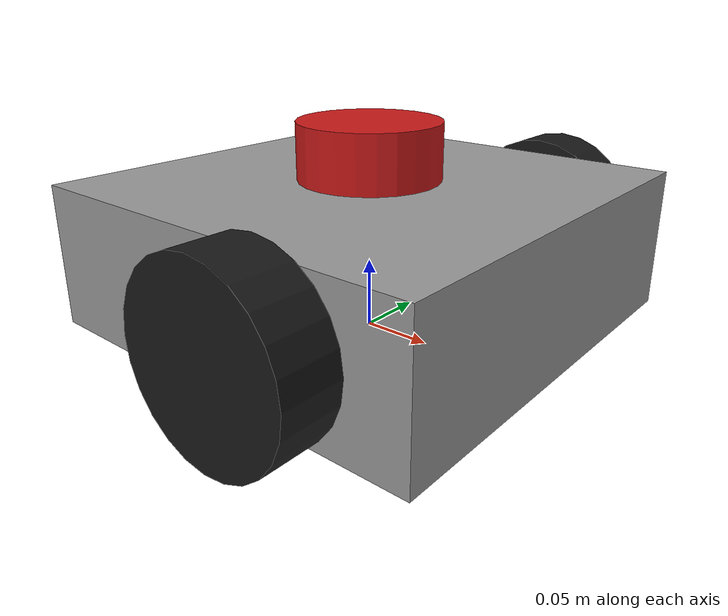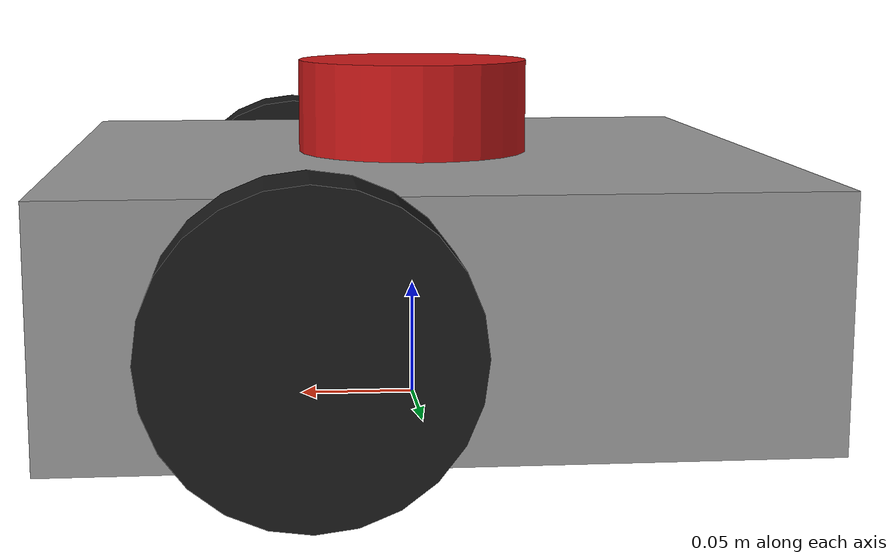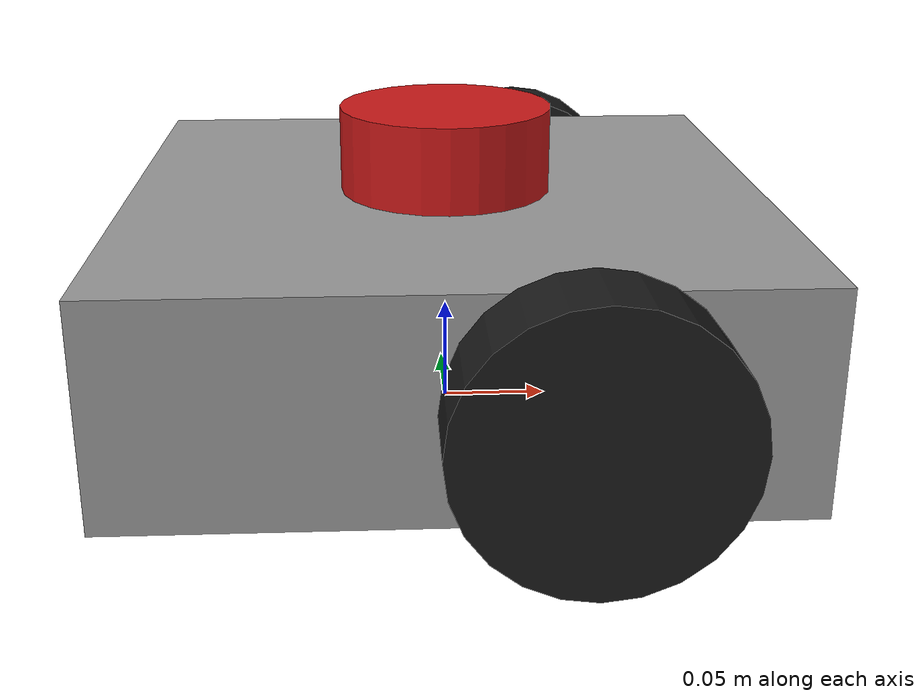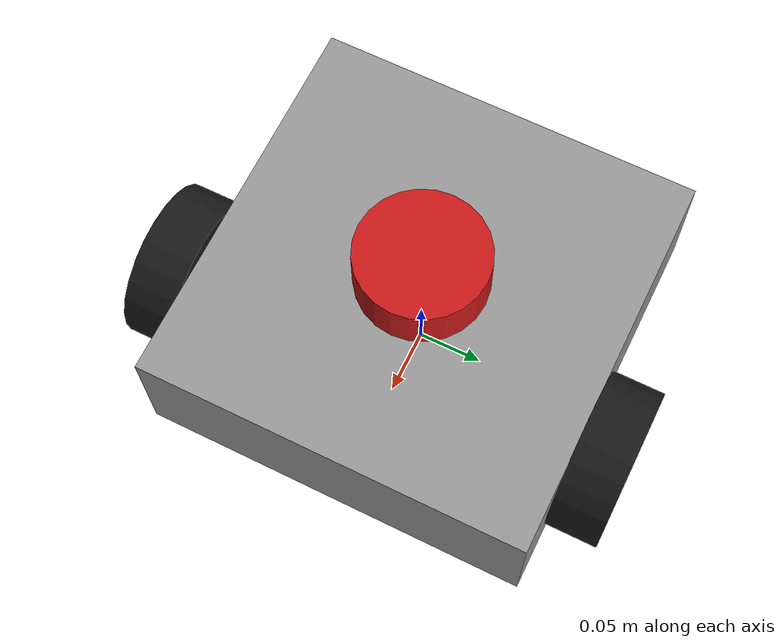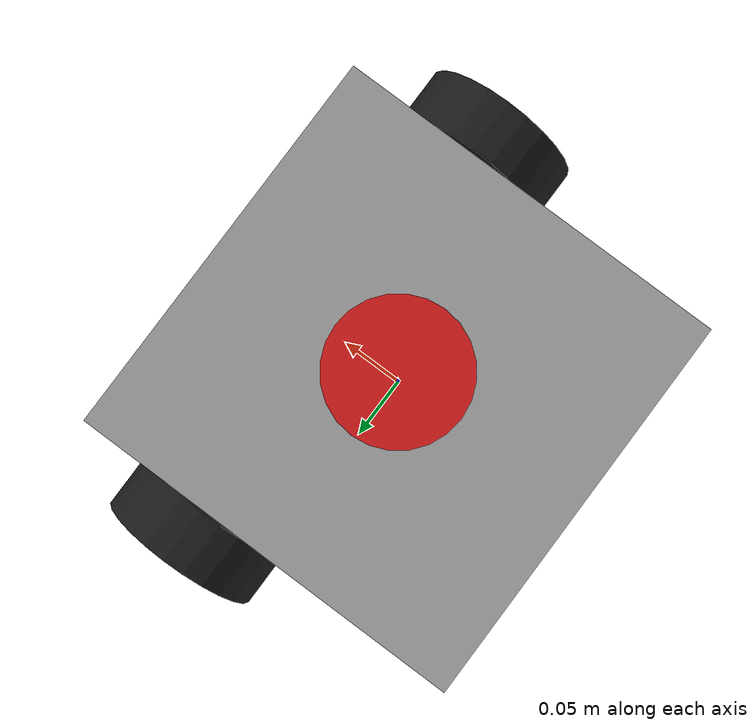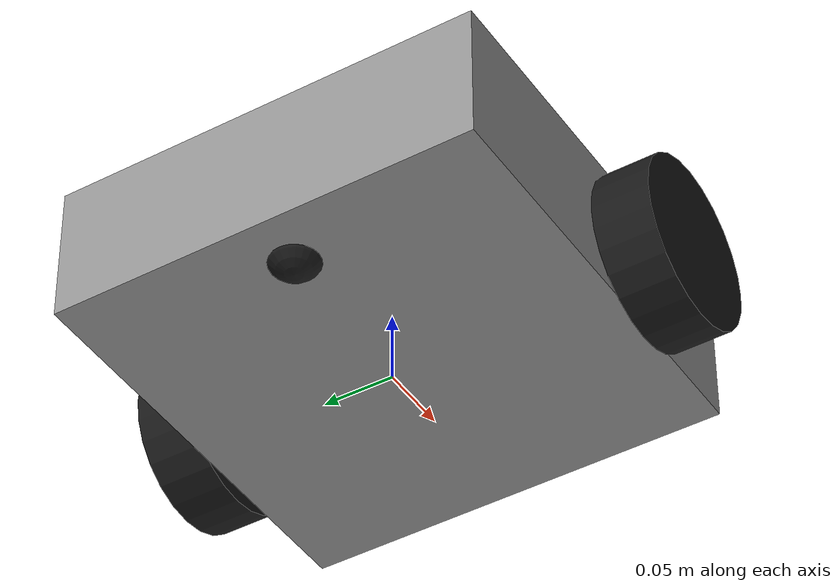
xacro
<?xml version="1.0"?>
<robot name="merobot" xmlns:xacro="http://www.ros.org/wiki/xacro">

  <!-- ==================== Dimensions ==================== -->

  <!-- Chassis (meters, kilograms) -->
  <xacro:property name="base_length" value="0.3"/>
  <xacro:property name="base_width" value="0.3"/>
  <xacro:property name="base_height" value="0.1"/>
  <xacro:property name="base_mass" value="2.0"/>

  <!-- Wheels -->
  <xacro:property name="wheel_radius" value="0.06"/>
  <xacro:property name="wheel_width" value="0.04"/>
  <xacro:property name="wheel_mass" value="0.3"/>
  <xacro:property name="wheel_x_offset" value="0.05"/>

  <!-- Caster -->
  <xacro:property name="caster_radius" value="0.02"/>
  <xacro:property name="caster_mass" value="0.05"/>
  <xacro:property name="caster_x_offset" value="-0.11"/>

  <!-- Lidar -->
  <xacro:property name="lidar_radius" value="0.05"/>
  <xacro:property name="lidar_height" value="0.04"/>
  <xacro:property name="lidar_mass" value="0.1"/>

  <!-- ==================== Colors ==================== -->

  <material name="gray">
    <color rgba="0.6 0.6 0.6 1.0"/>
  </material>

  <material name="black">
    <color rgba="0.1 0.1 0.1 1.0"/>
  </material>

  <material name="red">
    <color rgba="0.8 0.1 0.1 1.0"/>
  </material>

  <!-- ==================== Chassis ==================== -->

  <link name="base_link">
    <visual>
      <geometry>
        <box size="${base_length} ${base_width} ${base_height}"/>
      </geometry>
      <material name="gray"/>
    </visual>

    <collision>
      <geometry>
        <box size="${base_length} ${base_width} ${base_height}"/>
      </geometry>
    </collision>

    <inertial>
      <mass value="${base_mass}"/>
      <inertia
        ixx="${base_mass/12.0*(base_width*base_width + base_height*base_height)}"
        iyy="${base_mass/12.0*(base_length*base_length + base_height*base_height)}"
        izz="${base_mass/12.0*(base_length*base_length + base_width*base_width)}"
        ixy="0" ixz="0" iyz="0"/>
    </inertial>
  </link>

  <!-- Ground reference point -->
  <link name="base_footprint"/>

  <joint name="base_footprint_joint" type="fixed">
    <parent link="base_footprint"/>
    <child link="base_link"/>
    <origin xyz="0 0 ${wheel_radius}" rpy="0 0 0"/>
  </joint>

  <!-- ==================== Wheels ==================== -->

  <xacro:macro name="wheel" params="prefix y_reflect">

    <link name="${prefix}_wheel">
      <visual>
        <origin xyz="0 0 0" rpy="${pi/2} 0 0"/>
        <geometry>
          <cylinder radius="${wheel_radius}" length="${wheel_width}"/>
        </geometry>
        <material name="black"/>
      </visual>

      <collision>
        <origin xyz="0 0 0" rpy="${pi/2} 0 0"/>
        <geometry>
          <cylinder radius="${wheel_radius}" length="${wheel_width}"/>
        </geometry>
      </collision>

      <inertial>
        <origin xyz="0 0 0" rpy="${pi/2} 0 0"/>
        <mass value="${wheel_mass}"/>
        <inertia
          ixx="${wheel_mass/12.0*(3*wheel_radius*wheel_radius + wheel_width*wheel_width)}"
          iyy="${wheel_mass/12.0*(3*wheel_radius*wheel_radius + wheel_width*wheel_width)}"
          izz="${wheel_mass/2.0*wheel_radius*wheel_radius}"
          ixy="0" ixz="0" iyz="0"/>
      </inertial>
    </link>

    <joint name="${prefix}_wheel_joint" type="continuous">
      <parent link="base_link"/>
      <child link="${prefix}_wheel"/>
      <origin xyz="${wheel_x_offset} ${y_reflect*(base_width/2 + wheel_width/2)} 0" rpy="0 0 0"/>
      <axis xyz="0 1 0"/>
    </joint>

  </xacro:macro>

  <xacro:wheel prefix="left" y_reflect="1"/>
  <xacro:wheel prefix="right" y_reflect="-1"/>

  <!-- ==================== Caster ==================== -->

  <link name="caster_wheel">
    <visual>
      <geometry>
        <sphere radius="${caster_radius}"/>
      </geometry>
      <material name="black"/>
    </visual>

    <collision>
      <geometry>
        <sphere radius="${caster_radius}"/>
      </geometry>
    </collision>

    <inertial>
      <mass value="${caster_mass}"/>
      <inertia
        ixx="${2.0/5.0*caster_mass*caster_radius*caster_radius}"
        iyy="${2.0/5.0*caster_mass*caster_radius*caster_radius}"
        izz="${2.0/5.0*caster_mass*caster_radius*caster_radius}"
        ixy="0" ixz="0" iyz="0"/>
    </inertial>
  </link>

  <joint name="caster_wheel_joint" type="fixed">
    <parent link="base_link"/>
    <child link="caster_wheel"/>
    <origin xyz="${caster_x_offset} 0 ${-(wheel_radius - caster_radius)}" rpy="0 0 0"/>
  </joint>

  <!-- ==================== Lidar ==================== -->

  <link name="lidar_link">
    <visual>
      <geometry>
        <cylinder radius="${lidar_radius}" length="${lidar_height}"/>
      </geometry>
      <material name="red"/>
    </visual>

    <collision>
      <geometry>
        <cylinder radius="${lidar_radius}" length="${lidar_height}"/>
      </geometry>
    </collision>

    <inertial>
      <mass value="${lidar_mass}"/>
      <inertia
        ixx="${lidar_mass/12.0*(3*lidar_radius*lidar_radius + lidar_height*lidar_height)}"
        iyy="${lidar_mass/12.0*(3*lidar_radius*lidar_radius + lidar_height*lidar_height)}"
        izz="${lidar_mass/2.0*lidar_radius*lidar_radius}"
        ixy="0" ixz="0" iyz="0"/>
    </inertial>
  </link>

  <joint name="lidar_joint" type="fixed">
    <parent link="base_link"/>
    <child link="lidar_link"/>
    <origin xyz="0 0 ${base_height/2 + lidar_height/2}" rpy="0 0 0"/>
  </joint>

  <!-- ==================== Gazebo ==================== -->

  <gazebo>
    <!-- Motors: turns velocity commands into wheel rotation -->
    <plugin filename="gz-sim-diff-drive-system" name="gz::sim::systems::DiffDrive">
      <left_joint>left_wheel_joint</left_joint>
      <right_joint>right_wheel_joint</right_joint>
      <wheel_separation>${base_width + wheel_width}</wheel_separation>
      <wheel_radius>${wheel_radius}</wheel_radius>
      <topic>cmd_vel</topic>
      <odom_topic>odom</odom_topic>
      <tf_topic>tf</tf_topic>
      <frame_id>odom</frame_id>
      <child_frame_id>base_footprint</child_frame_id>
      <odom_publish_frequency>30</odom_publish_frequency>
    </plugin>

    <!-- Reports wheel angles back to ROS -->
    <plugin filename="gz-sim-joint-state-publisher-system" name="gz::sim::systems::JointStatePublisher">
      <topic>joint_states</topic>
    </plugin>
  </gazebo>

  <!-- Caster slides freely -->
  <gazebo reference="caster_wheel">
    <mu1>0.0</mu1>
    <mu2>0.0</mu2>    <mu2>0.0</mu2>
  </gazebo>

  <!-- Lidar sensor -->
  <gazebo reference="lidar_link">
    <sensor name="lidar" type="gpu_lidar">
      <topic>scan</topic>
      <gz_frame_id>lidar_link</gz_frame_id>
      <update_rate>10</update_rate>
      <always_on>true</always_on>
      <visualize>true</visualize>
      <lidar>
        <scan>
          <horizontal>
            <samples>360</samples>
            <resolution>1</resolution>
            <min_angle>-3.14159</min_angle>
            <max_angle>3.14159</max_angle>
          </horizontal>
        </scan>
        <range>
          <min>0.12</min>
          <max>8.0</max>
          <resolution>0.01</resolution>
        </range>
      </lidar>
    </sensor>
  </gazebo>

</robot>
